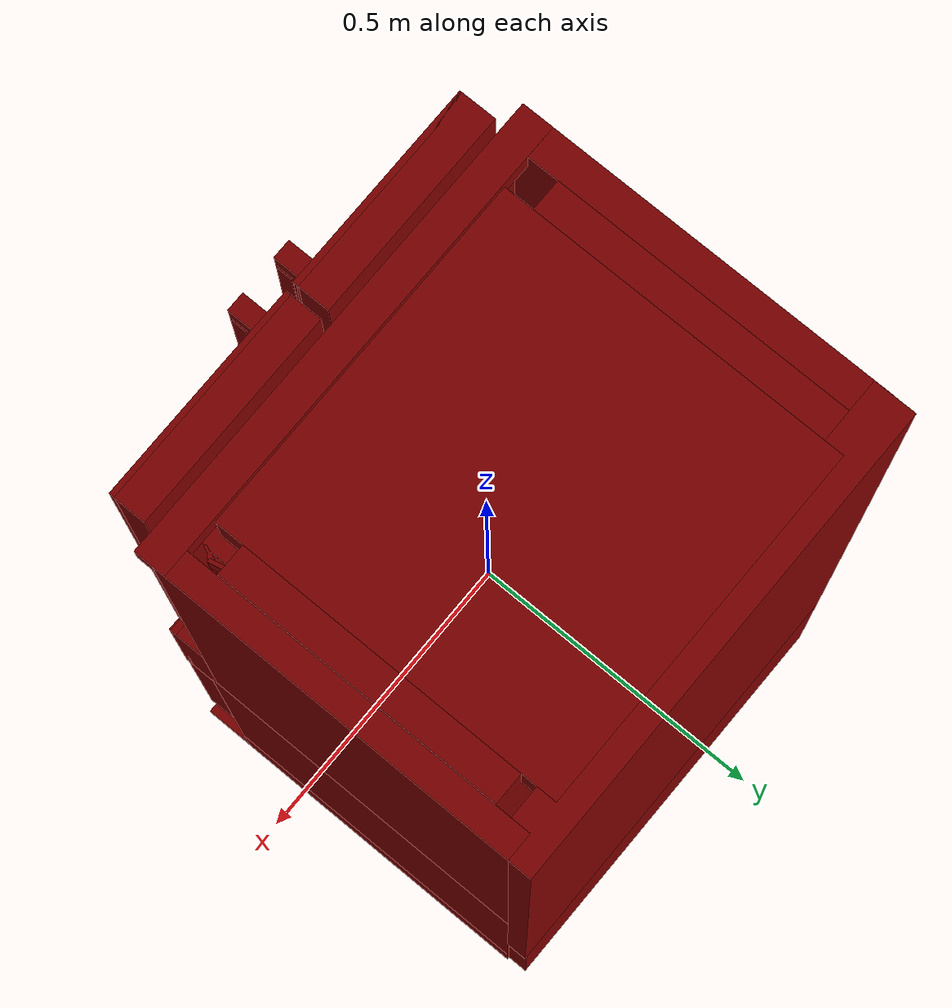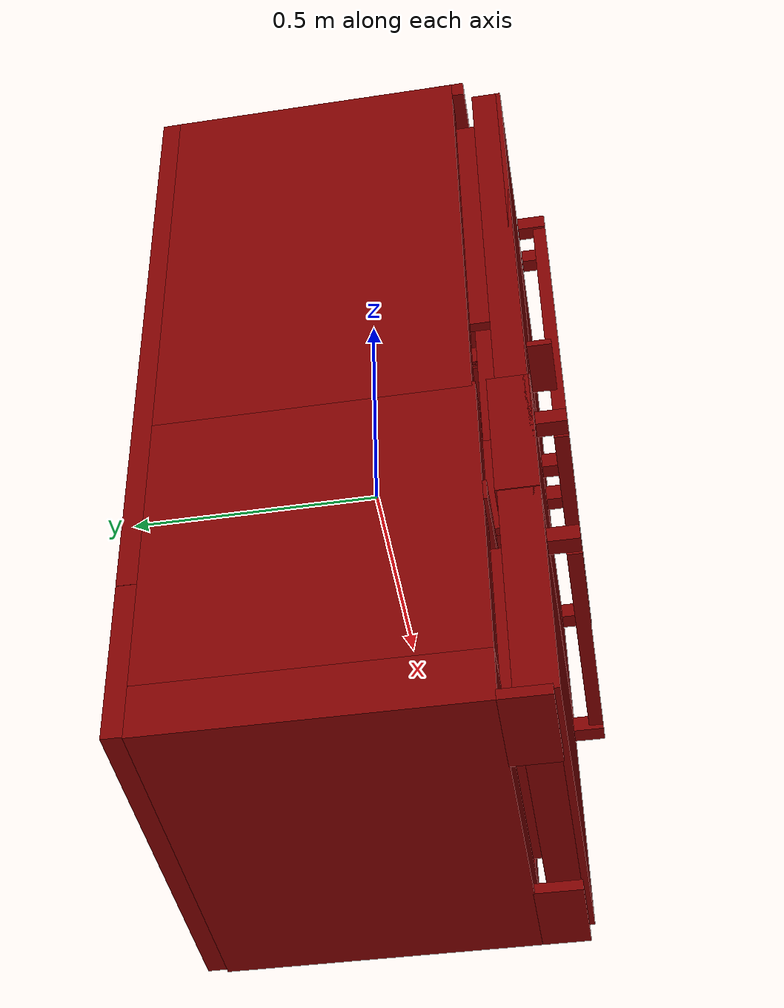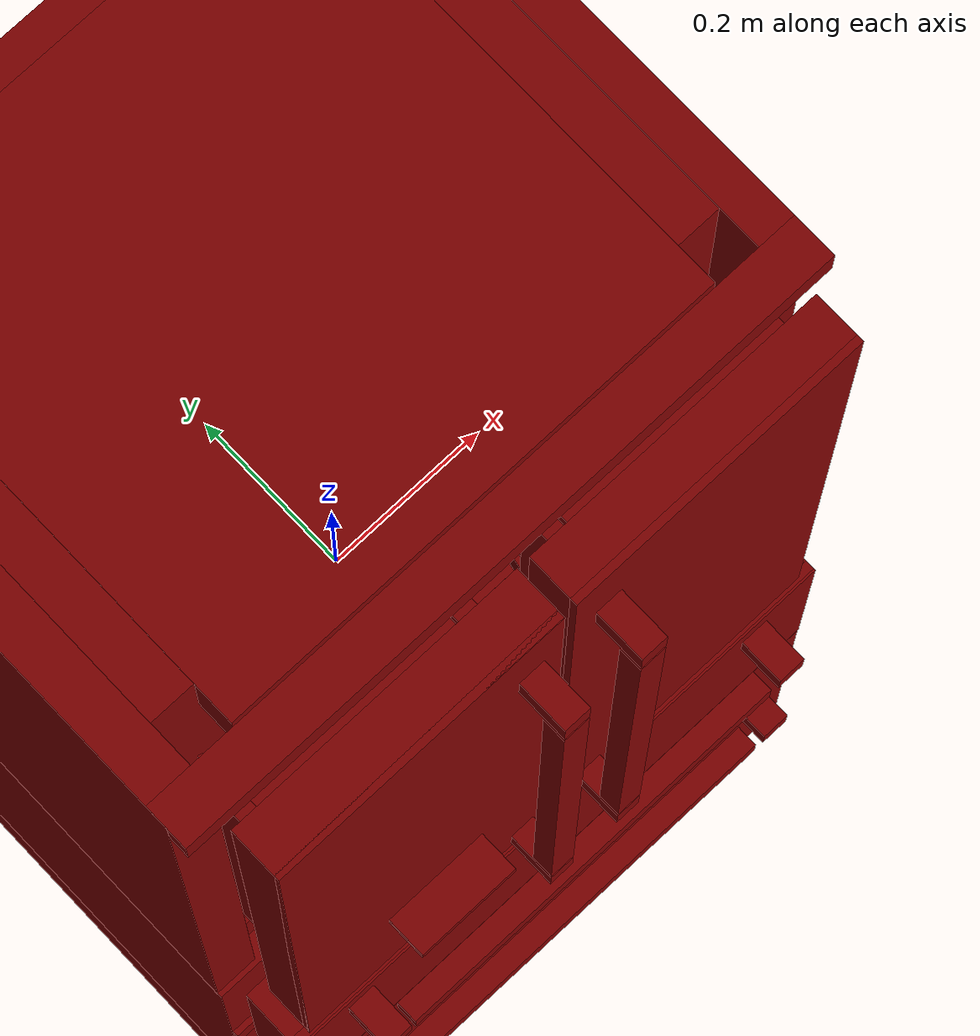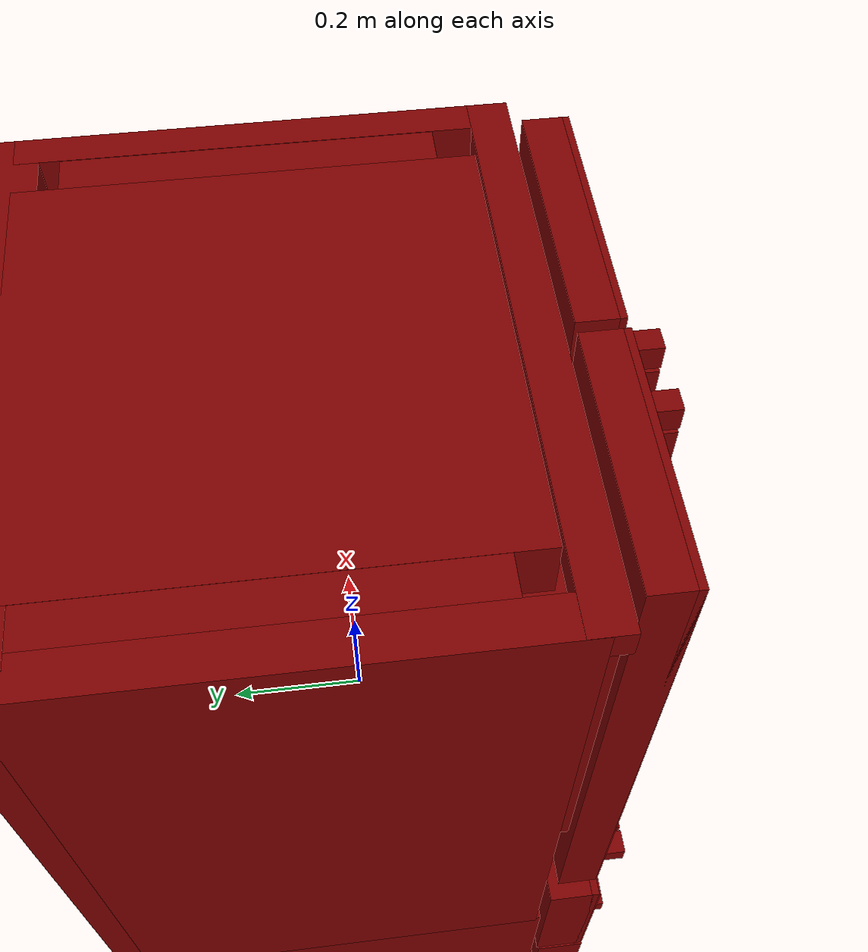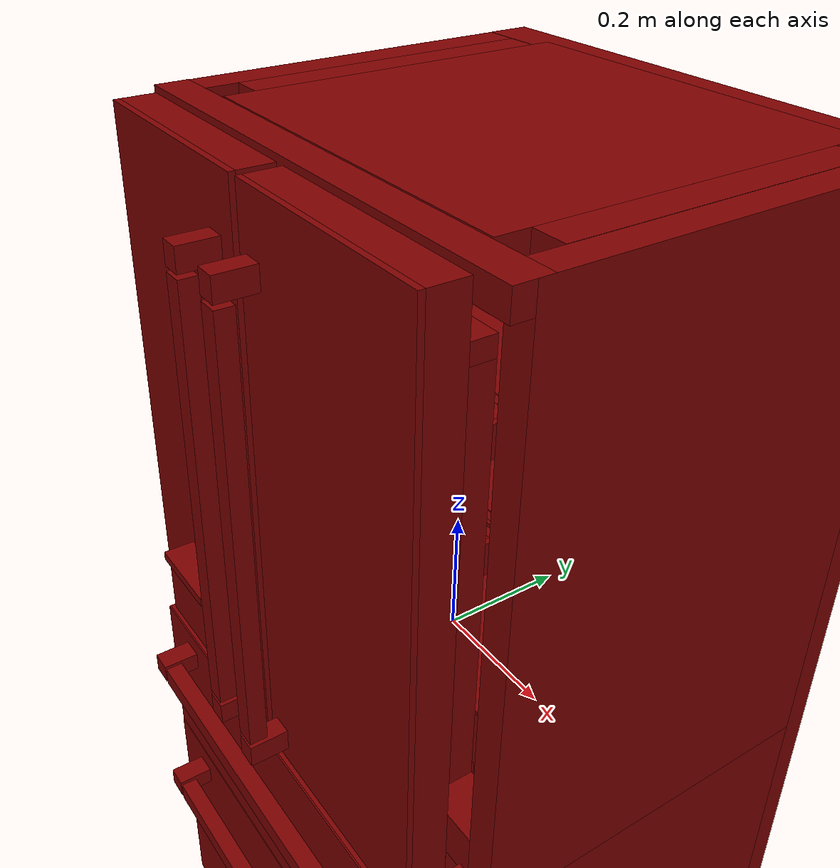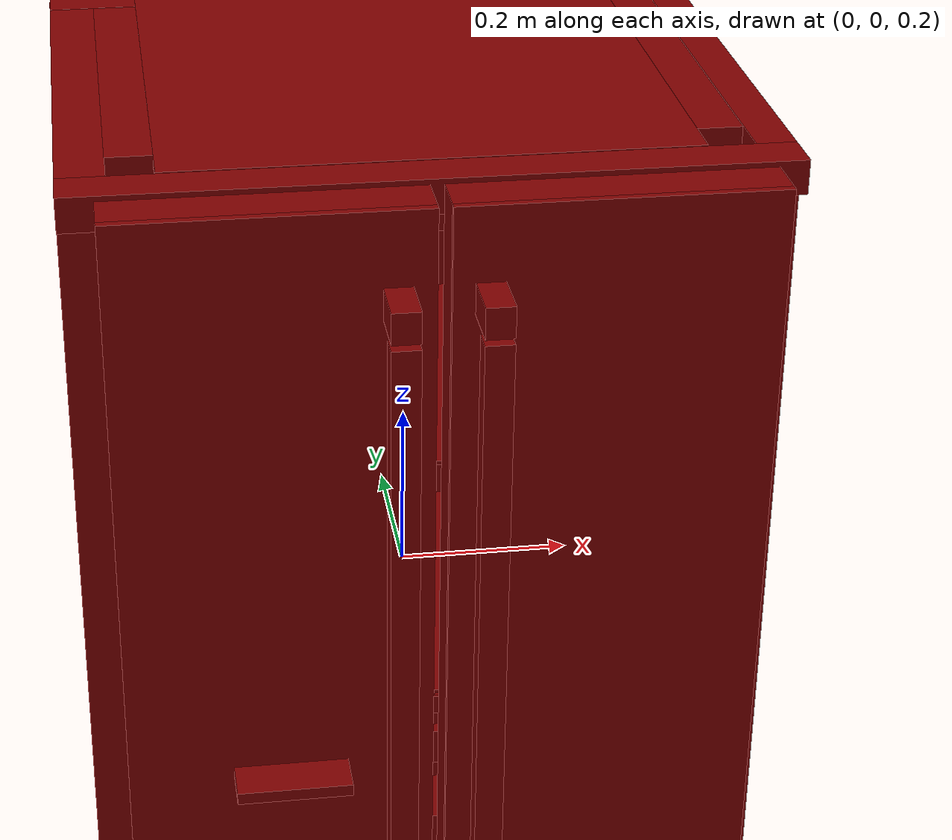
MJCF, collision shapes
<?xml version='1.0' encoding='UTF-8'?>
<mujoco model="model">
  <option timestep="0.002" gravity="0.0 0.0 -9.81"/>
  <compiler angle="radian"/>
  <asset>
    <mesh file="visuals/freezer0.obj" name="freezer0_vis"/>
    <mesh file="visuals/freezer1.obj" name="freezer1_vis"/>
    <mesh file="visuals/fridge_drawer0.obj" name="fridge_drawer0_vis"/>
    <mesh file="visuals/fridge_left_door.obj" name="fridge_left_door_vis"/>
    <mesh file="visuals/fridge_left_door_Clear.obj" name="fridge_left_door_Clear_vis"/>
    <mesh file="visuals/fridge_right_door.obj" name="fridge_right_door_vis"/>
    <mesh file="visuals/fridge_right_door_Clear.obj" name="fridge_right_door_Clear_vis"/>
    <mesh file="visuals/Body001.obj" name="Body001_vis"/>
    <mesh file="visuals/Body001_Clear.obj" name="Body001_Clear_vis"/>
    <mesh file="visuals/Body002.obj" name="Body002_vis"/>
    <texture file="visuals/T_BC001.png" name="Body001_material" type="2d"/>
    <material name="Body001_material" rgba="1 1 1 1.0" texture="Body001_material" shininess="2" specular="2"/>
    <texture file="visuals/T_BC001.png" name="freezer0_material" type="2d"/>
    <material name="freezer0_material" rgba="1 1 1 1.0" texture="freezer0_material" shininess="2" specular="2"/>
    <texture file="visuals/T_BC001.png" name="freezer1_material" type="2d"/>
    <material name="freezer1_material" rgba="1 1 1 1.0" texture="freezer1_material" shininess="2" specular="2"/>
    <texture file="visuals/T_BC001.png" name="fridge_drawer0_material" type="2d"/>
    <material name="fridge_drawer0_material" rgba="1 1 1 1.0" texture="fridge_drawer0_material" shininess="0.6" specular="0.3"/>
    <texture file="visuals/T_BC001.png" name="fridge_left_door_material" type="2d"/>
    <material name="fridge_left_door_material" rgba="1 1 1 1.0" texture="fridge_left_door_material" shininess="2" specular="2"/>
    <material name="fridge_left_door_Clear_material" rgba="0.749724805355072 0.749724805355072 0.749724805355072 0.699999988079071" shininess="0.2512328028678894" specular="0.3103448502657381"/>
    <texture file="visuals/T_BC001.png" name="fridge_right_door_material" type="2d"/>
    <material name="fridge_right_door_material" rgba="1 1 1 1.0" texture="fridge_right_door_material" shininess="2" specular="2"/>
    <material name="fridge_right_door_Clear_material" rgba="0.749724805355072 0.749724805355072 0.749724805355072 0.699999988079071" shininess="0.2512328028678894" specular="0.3103448502657381"/>
    <texture file="visuals/T_BC001.png" name="Body002_material" type="2d"/>
    <material name="Body002_material" rgba="1 1 1 1.0" texture="Body002_material" shininess="0.6585055291652679" specular="0.3103448502657381"/>
    <material name="Body001_Clear_material" rgba="0.749724805355072 0.749724805355072 0.749724805355072 0.699999988079071" shininess="0.2512328028678894" specular="0.3103448502657381"/>
  </asset>
  <default>
    <default class="visual">
      <geom conaffinity="0" contype="0" group="1" type="mesh"/>
    </default>
    <default class="collision">
      <geom group="0" rgba="0.5 0 0 0.5"/>
    </default>
    <default class="spawn">
      <geom group="0" rgba="1 1 1 0.5" contype="0" conaffinity="0"/>
      <site group="0" rgba="1 1 1 0.5"/>
    </default>
    <default class="region">
      <geom group="1" conaffinity="0" contype="0" rgba="0 1 0 0"/>
    </default>
  </default>
  <worldbody>
    <body>
      <body name="object">
        <geom mesh="Body001_vis" type="mesh" solimp="0.998 0.998 0.001" solref="0.001 1" friction="0.95 0.3 0.1" class="visual" material="Body001_material"/>
        <geom class="collision" type="box" pos="0.00429994 0.08053963 0.41524273" size="0.2578120231628418 0.2319180816411972 0.0024863099679350853" quat="1.0 0.0 0.0 0.0"/>
        <geom class="collision" type="box" pos="0.00429994 0.08053963 0.10372669" size="0.2578120231628418 0.2319188117980957 0.0024863744620233774" quat="1.0 0.0 0.0 0.0"/>
        <geom class="collision" type="box" pos="0.36522140 0.06541250 0.35242346" size="0.021883608773350716 0.2929628789424896 0.4526256322860718" quat="1.0 0.0 0.0 0.0"/>
        <geom class="collision" type="box" pos="-0.36098290 0.06286985 0.34691796" size="0.02612154744565487 0.2955061197280884 0.45772409439086914" quat="1.0 0.0 0.0 0.0"/>
        <geom class="collision" type="box" pos="0.00022345 0.36132324 0.15897222" size="0.3868730366230011 0.03419971093535423 0.6460715532302856" quat="1.0 0.0 0.0 0.0"/>
        <geom class="collision" type="box" pos="-0.00163238 0.33085490 -0.44926712" size="0.3845725655555725 0.06466779112815857 0.35290899872779846" quat="1.0 0.0 0.0 0.0"/>
        <geom class="collision" type="box" pos="-0.00058310 0.13760382 -0.63301572" size="0.35854974389076233 0.10725203901529312 0.061925146728754044" quat="0.8052064180374146 0.5929946303367615 -1.3167124518090139e-16 1.2232067335595694e-24"/>
        <geom class="collision" type="box" pos="0.00407962 0.07765477 0.76442716" size="0.28847646713256836 0.2807242274284363 0.04062699154019356" quat="1.0 0.0 0.0 0.0"/>
        <geom class="collision" type="box" pos="-0.00058310 0.07654325 -0.07229346" size="0.35847967863082886 0.2862354815006256 0.037867914885282516" quat="1.0 0.0 0.0 0.0"/>
        <geom class="collision" type="box" pos="-0.34605194 0.05985736 -0.40147525" size="0.04105202481150627 0.29852262139320374 0.3013904094696045" quat="1.0 0.0 0.0 0.0"/>
        <geom class="collision" type="box" pos="0.34605136 0.05985736 -0.40147525" size="0.04105301573872566 0.2985234260559082 0.3013916611671448" quat="1.0 0.0 0.0 0.0"/>
        <geom class="collision" type="box" pos="-0.00163238 -0.21026289 -0.36398423" size="0.38458558917045593 0.035720095038414 0.020923875272274017" quat="1.0 0.0 0.0 0.0"/>
        <geom class="collision" type="box" pos="0.00000020 0.05985809 -0.75382665" size="0.38709717988967896 0.2985237240791321 0.051228009164333344" quat="1.0 0.0 0.0 0.0"/>
        <geom class="collision" type="box" pos="-0.00058310 0.20006446 -0.59845778" size="0.35854974389076233 0.10667490214109421 0.07130120694637299" quat="0.6569743752479553 0.7539129257202148 -1.6740228450452978e-16 8.92800271459846e-24"/>
        <geom class="collision" type="box" pos="0.30282527 0.07270144 0.34711152" size="0.03964235633611679 0.22914409637451172 0.45793837308883667" quat="1.0 0.0 0.0 0.0"/>
        <geom class="collision" type="box" pos="-0.29257596 0.09765006 0.34691796" size="0.04262344166636467 0.2529412806034088 0.4577459990978241" quat="1.0 0.0 0.0 0.0"/>
        <geom class="collision" type="box" pos="0.00001201 -0.23167586 0.78562674" size="0.38708651065826416 0.025593800470232964 0.019427740946412086" quat="1.0 0.0 0.0 0.0"/>
        <geom class="collision" type="box" pos="0.29462891 -0.28104802 -0.79497960" size="0.0924748033285141 0.04488556087017059 0.010075722821056843" quat="1.0 0.0 0.0 0.0"/>
        <geom class="collision" type="box" pos="-0.29428331 -0.28104799 -0.79497960" size="0.09282006323337555 0.044885627925395966 0.010075770318508148" quat="1.0 0.0 0.0 0.0"/>
        <body name="freezer0">
          <geom class="region" name="reg_freezer0" type="box" pos="-0.00027051500000001283 -0.075523725 -0.553304625" size="0.18287641500000001 0.095773025 0.12618860499999998"/>
          <joint axis="0.0 -1.0 0.0" pos="0.00101368 -0.13383156 -0.57095697" limited="true" name="freezer0_door_joint" range="0.0 0.35" type="slide" damping="1" frictionloss="1" armature=".01" stiffness="0.05"/>
          <geom mesh="freezer0_vis" type="mesh" solimp="0.998 0.998 0.001" solref="0.001 1" friction="0.95 0.3 0.1" class="visual" material="freezer0_material"/>
          <geom class="collision" type="box" pos="0.00346250 -0.10964801 -0.68620357" size="0.22164221107959747 0.15478265285491943 0.0027201969642192125" quat="1.0 0.0 0.0 0.0"/>
          <geom class="collision" type="box" pos="0.21982875 -0.10576967 -0.55323145" size="0.027847619727253914 0.15864357352256775 0.13464730978012085" quat="1.0 0.0 0.0 0.0"/>
          <geom class="collision" type="box" pos="0.00346275 0.07007306 -0.58077767" size="0.24033810198307037 0.008362683467566967 0.09997935593128204" quat="0.9911026954650879 -0.13309930264949799 0.0 0.0"/>
          <geom class="collision" type="box" pos="-0.00009194 -0.29854404 -0.56946692" size="0.3705858886241913 0.0373670868575573 0.21259479224681854" quat="1.0 0.0 0.0 0.0"/>
          <geom class="collision" type="box" pos="0.22542089 0.05179094 -0.54816529" size="0.020509198307991028 0.11963428556919098 0.034643225371837616" quat="0.796074390411377 0.6051988005638123 1.343811153374047e-16 -1.0018506990580435e-22"/>
          <geom class="collision" type="box" pos="-0.22561473 0.05179094 -0.54816529" size="0.020509198307991028 0.11963428556919098 0.034643225371837616" quat="0.796074390411377 0.6051988005638123 1.343811153374047e-16 -1.0018506990580435e-22"/>
          <geom class="collision" type="box" pos="0.00339290 -0.23416711 -0.54298207" size="0.26272672414779663 0.0309009812772274 0.15255071222782135" quat="1.0 0.0 0.0 0.0"/>
          <geom class="collision" type="box" pos="-0.00187906 -0.37971258 -0.40571642" size="0.25582998991012573 0.013592430390417576 0.015477221459150314" quat="1.0 0.0 0.0 0.0" name="freezer0_door_handle_main"/>
          <geom class="collision" type="box" pos="0.28486242 -0.36391133 -0.40571639" size="0.01756277121603489 0.029393699020147324 0.01547711156308651" quat="1.0 0.0 0.0 0.0" name="freezer0_door_handle_2"/>
          <geom class="collision" type="box" pos="-0.28075657 -0.36391133 -0.40571645" size="0.01756278984248638 0.029393699020147324 0.015477129258215427" quat="1.0 0.0 0.0 0.0" name="freezer0_door_handle_1"/>
          <geom class="collision" type="box" pos="-0.21911839 -0.10576967 -0.55323145" size="0.02575531229376793 0.15865635871887207 0.13464730978012085" quat="1.0 0.0 0.0 0.0"/>
          <geom class="collision" type="box" pos="-0.00009194 -0.32934680 -0.56946692" size="0.3705858886241913 0.006564554758369923 0.2125975340604782" quat="1.0 0.0 0.0 0.0" name="freezer0_door_main"/>
        </body>
        <body name="freezer1">
          <geom class="region" name="reg_freezer1" type="box" pos="-0.00027051500000001283 -0.025947825 -0.23928609" size="0.18287641500000001 0.132391385 0.08487766000000002"/>
          <joint axis="0.0 -1.0 0.0" pos="0.00101367 -0.07551161 -0.21655831" limited="true" name="freezer1_door_joint" range="0.0 0.35" type="slide" damping="1" frictionloss="1" armature=".01" stiffness="0.05"/>
          <geom mesh="freezer1_vis" type="mesh" solimp="0.998 0.998 0.001" solref="0.001 1" friction="0.95 0.3 0.1" class="visual" material="freezer1_material"/>
          <geom class="collision" type="box" pos="-0.00731538 -0.06078362 -0.33128613" size="0.22138048708438873 0.20362567901611328 0.0027201951015740633" quat="1.0 0.0 0.0 0.0"/>
          <geom class="collision" type="box" pos="0.22074578 -0.05690526 -0.23913382" size="0.028469815850257874 0.20750828087329865 0.08867860585451126" quat="1.0 0.0 0.0 0.0"/>
          <geom class="collision" type="box" pos="-0.21445107 -0.05690526 -0.23913382" size="0.023943940177559853 0.20750854909420013 0.0886787548661232" quat="1.0 0.0 0.0 0.0"/>
          <geom class="collision" type="box" pos="0.00351829 0.16319073 -0.26036015" size="0.24008996784687042 0.008406518027186394 0.08296908438205719" quat="0.9585145711898804 -0.2850435972213745 9.149510929898043e-18 2.302646245811321e-18"/>
          <geom class="collision" type="box" pos="0.00166587 -0.29653868 -0.21663700" size="0.37027525901794434 0.039372291415929794 0.13647471368312836" quat="1.0 0.0 0.0 0.0"/>
          <geom class="collision" type="box" pos="0.22074578 0.03803797 -0.17746216" size="0.02847021073102951 0.2054920345544815 0.02835121564567089" quat="1.0 0.0 0.0 0.0"/>
          <geom class="collision" type="box" pos="0.22074578 0.13477162 -0.22790354" size="0.018643945455551147 0.04744146391749382 0.0580790638923645" quat="0.9578086137771606 -0.2874067723751068 -6.3817123224809e-17 -2.024741478083862e-24"/>
          <geom class="collision" type="box" pos="-0.22033565 0.13477162 -0.22790354" size="0.018643945455551147 0.04744146391749382 0.0580790638923645" quat="0.9578086137771606 -0.2874067723751068 -6.3817123224809e-17 -2.024741478083862e-24"/>
          <geom class="collision" type="box" pos="-0.22033565 0.03803797 -0.17812773" size="0.02847023867070675 0.205492302775383 0.027685679495334625" quat="1.0 0.0 0.0 0.0"/>
          <geom class="collision" type="box" pos="-0.00204915 0.22651372 -0.19553304" size="0.24674472212791443 0.017031461000442505 0.010282894596457481" quat="1.0 0.0 0.0 0.0"/>
          <geom class="collision" type="box" pos="0.00380645 -0.22836425 -0.22228651" size="0.24851921200752258 0.03516469523310661 0.10881463438272476" quat="1.0 0.0 0.0 0.0"/>
          <geom class="collision" type="box" pos="-0.28075657 -0.36391133 -0.12384887" size="0.017562828958034515 0.029393699020147324 0.01547717023640871" quat="1.0 0.0 0.0 0.0" name="freezer1_door_handle_1"/>
          <geom class="collision" type="box" pos="0.28486242 -0.36391133 -0.12384881" size="0.017562847584486008 0.029393699020147324 0.015477187931537628" quat="1.0 0.0 0.0 0.0" name="freezer1_door_handle_2"/>
          <geom class="collision" type="box" pos="-0.00187906 -0.37971258 -0.12384884" size="0.25583112239837646 0.013592430390417576 0.015477297827601433" quat="1.0 0.0 0.0 0.0" name="freezer1_door_handle_main"/>
          <geom class="collision" type="box" pos="0.00166587 -0.32762622 -0.21663700" size="0.37027525901794434 0.0057304613292217255 0.13647574186325073" quat="1.0 0.0 0.0 0.0" name="freezer1_door_main"/>
        </body>
        <body name="fridge_drawer0">
          <geom class="region" name="reg_fridge_drawer0" type="box" pos="0.00853008999999999 0.045865735 0.04288651" size="0.19115925 0.164030845 0.04248364"/>
          <joint axis="0.0 -1.0 0.0" pos="0.00791369 0.04509950 0.03411137" limited="true" name="fridge_drawer0_joint" range="0.0 0.4" type="slide" damping="1" frictionloss="1" armature=".01" stiffness="0.05"/>
          <geom mesh="fridge_drawer0_vis" type="mesh" solimp="0.998 0.998 0.001" solref="0.001 1" friction="0.95 0.3 0.1" class="visual" material="fridge_drawer0_material"/>
          <geom class="collision" type="box" pos="0.00808736 -0.13497960 0.08540598" size="0.19737645983695984 0.007127725053578615 0.006802691146731377" quat="1.0 0.0 0.0 0.0"/>
          <geom class="collision" type="box" pos="-0.20990857 0.04549089 0.03437742" size="0.021897485479712486 0.1901419758796692 0.05790940672159195" quat="1.0 0.0 0.0 0.0"/>
          <geom class="collision" type="box" pos="0.00735539 0.22654619 0.03437742" size="0.19566050171852112 0.010331028141081333 0.05791036784648895" quat="1.0 0.0 0.0 0.0"/>
          <geom class="collision" type="box" pos="0.00665960 0.04327609 -0.01403625" size="0.23699535429477692 0.1879308670759201 0.010060373693704605" quat="1.0 0.0 0.0 0.0"/>
          <geom class="collision" type="box" pos="0.00808736 -0.14322565 0.07998265" size="0.19737647473812103 0.0017362789949402213 0.012096093967556953" quat="1.0 0.0 0.0 0.0"/>
          <geom class="collision" type="box" pos="0.00808736 -0.13629312 0.01792400" size="0.19737368822097778 0.008400622755289078 0.02294149249792099" quat="1.0 0.0 0.0 0.0"/>
          <geom class="collision" type="box" pos="0.00808736 -0.12626548 0.04385847" size="0.19737647473812103 0.0017362789949402213 0.048016659915447235" quat="1.0 0.0 0.0 0.0"/>
          <geom class="collision" type="box" pos="0.17681504 -0.13492932 0.06342971" size="0.029539743438363075 0.010116226971149445 0.02181132882833481" quat="1.0 0.0 0.0 0.0"/>
          <geom class="collision" type="box" pos="0.22614014 0.04547463 0.03437742" size="0.021860139444470406 0.1901276409626007 0.05790990591049194" quat="1.0 0.0 0.0 0.0"/>
          <geom class="collision" type="box" pos="0.00648502 -0.12695871 0.06054501" size="0.14187918603420258 0.002305061789229512 0.021040746942162514" quat="1.0 0.0 0.0 0.0"/>
          <geom class="collision" type="box" pos="-0.16343053 -0.13492932 0.06342971" size="0.029539743438363075 0.010116291232407093 0.021811408922076225" quat="1.0 0.0 0.0 0.0"/>
        </body>
        <body name="fridge_left_door">
          <joint axis="0.0 0.0 -1.0" pos="-0.34544427 -0.31172749 0.36478308" limited="true" name="fridge_left_door_joint" range="0.0 1.5707963267948966" type="hinge" damping="1" frictionloss="1" armature=".01" stiffness="0.05"/>
          <geom mesh="fridge_left_door_vis" type="mesh" solimp="0.998 0.998 0.001" solref="0.001 1" friction="0.95 0.3 0.1" class="visual" material="fridge_left_door_material"/>
          <geom class="collision" type="box" pos="-0.05180522 -0.37971258 0.34535042" size="0.015476447530090809 0.013592430390417576 0.3356543183326721" quat="1.0 0.0 0.0 0.0" name="fridge_left_door_handle_main"/>
          <geom class="collision" type="box" pos="-0.05180522 -0.36391133 -0.01431408" size="0.015477113425731659 0.029393699020147324 0.01669364422559738" quat="1.0 0.0 0.0 0.0" name="fridge_left_door_handle_1"/>
          <geom class="collision" type="box" pos="-0.05180522 -0.36391133 0.70518908" size="0.015477100387215614 0.029393699020147324 0.017562735825777054" quat="1.0 0.0 0.0 0.0" name="fridge_left_door_handle_2"/>
          <geom class="collision" type="box" pos="-0.19205970 -0.22383907 0.40688360" size="0.110587477684021 0.05434567481279373 0.0026560069527477026" quat="1.0 0.0 0.0 0.0"/>
          <geom class="collision" type="box" pos="-0.07356167 -0.19498489 0.42777664" size="0.003092939266934991 0.02805575355887413 0.021901151165366173" quat="0.9885798096656799 0.0 0.0 0.15069818496704102"/>
          <geom class="collision" type="box" pos="-0.19003563 -0.17521169 0.44392169" size="0.11059349030256271 0.0017140626441687346 0.004185756202787161" quat="0.9622097015380859 -0.2723095715045929 -0.0 0.0"/>
          <geom class="collision" type="box" pos="-0.08153414 -0.25062093 0.42777664" size="0.0028704835567623377 0.01288655772805214 0.021901151165366173" quat="0.9840865731239319 0.0 -0.0 -0.1776898056268692"/>
          <geom class="collision" type="box" pos="-0.09724594 -0.27157285 0.42952520" size="0.0033591128885746002 0.01288655772805214 0.019200073555111885" quat="0.8508251905441284 0.0 -0.0 -0.5254489183425903"/>
          <geom class="collision" type="box" pos="-0.11413494 -0.27711564 0.42747924" size="0.0019354462856426835 0.005980806425213814 0.017154110595583916" quat="0.7541599273681641 0.0 -0.0 -0.6566908359527588"/>
          <geom class="collision" type="box" pos="-0.19156798 -0.27733248 0.41498447" size="0.07109232246875763 0.0015521845780313015 0.005146923940628767" quat="1.0 0.0 0.0 0.0"/>
          <geom class="collision" type="box" pos="-0.07589169 -0.22703306 0.42777664" size="0.0038647258188575506 0.01288655772805214 0.021901151165366173" quat="0.9840865731239319 0.0 -0.0 -0.1776898056268692"/>
          <geom class="collision" type="box" pos="-0.30819899 -0.22703306 0.42947826" size="0.0038647258188575506 0.01288655772805214 0.021901151165366173" quat="0.9840865731239319 0.0 0.0 0.1776898205280304"/>
          <geom class="collision" type="box" pos="-0.26995576 -0.27711564 0.42918086" size="0.0019354462856426835 0.005980806425213814 0.017154110595583916" quat="0.7541599273681641 0.0 0.0 0.6566908359527588"/>
          <geom class="collision" type="box" pos="-0.28684477 -0.27157285 0.43122682" size="0.0033591128885746002 0.01288655772805214 0.019200073555111885" quat="0.8508251905441284 0.0 0.0 0.5254489183425903"/>
          <geom class="collision" type="box" pos="-0.30255658 -0.25062093 0.42947826" size="0.0028704835567623377 0.01288655772805214 0.021901151165366173" quat="0.9840865731239319 0.0 0.0 0.1776898205280304"/>
          <geom class="collision" type="box" pos="-0.31052903 -0.19498489 0.42947826" size="0.003092939266934991 0.02805575355887413 0.021901151165366173" quat="0.9885798096656799 0.0 -0.0 -0.15069817006587982"/>
          <geom class="collision" type="box" pos="-0.19003563 -0.17521169 0.60272768" size="0.11059349030256271 0.0017140626441687346 0.004185756202787161" quat="0.9622097015380859 -0.2723095715045929 -0.0 0.0"/>
          <geom class="collision" type="box" pos="-0.31052903 -0.19498489 0.58828429" size="0.003092939266934991 0.02805575355887413 0.021901151165366173" quat="0.9885798096656799 0.0 -0.0 -0.15069817006587982"/>
          <geom class="collision" type="box" pos="-0.30255658 -0.25062093 0.58828429" size="0.0028704835567623377 0.01288655772805214 0.021901151165366173" quat="0.9840865731239319 0.0 0.0 0.1776898205280304"/>
          <geom class="collision" type="box" pos="-0.28684477 -0.27157285 0.59003285" size="0.0033591128885746002 0.01288655772805214 0.019200073555111885" quat="0.8508251905441284 0.0 0.0 0.5254489183425903"/>
          <geom class="collision" type="box" pos="-0.26995576 -0.27711564 0.58798686" size="0.0019354462856426835 0.005980806425213814 0.017154110595583916" quat="0.7541599273681641 0.0 0.0 0.6566908359527588"/>
          <geom class="collision" type="box" pos="-0.30819899 -0.22703306 0.58828429" size="0.0038647258188575506 0.01288655772805214 0.021901151165366173" quat="0.9840865731239319 0.0 0.0 0.1776898205280304"/>
          <geom class="collision" type="box" pos="-0.07589169 -0.22703306 0.58658263" size="0.0038647258188575506 0.01288655772805214 0.021901151165366173" quat="0.9840865731239319 0.0 -0.0 -0.1776898056268692"/>
          <geom class="collision" type="box" pos="-0.11413494 -0.27711564 0.58628521" size="0.0019354462856426835 0.005980806425213814 0.017154110595583916" quat="0.7541599273681641 0.0 -0.0 -0.6566908359527588"/>
          <geom class="collision" type="box" pos="-0.09724594 -0.27157285 0.58833119" size="0.0033591128885746002 0.01288655772805214 0.019200073555111885" quat="0.8508251905441284 0.0 -0.0 -0.5254489183425903"/>
          <geom class="collision" type="box" pos="-0.08153414 -0.25062093 0.58658263" size="0.0028704835567623377 0.01288655772805214 0.021901151165366173" quat="0.9840865731239319 0.0 -0.0 -0.1776898056268692"/>
          <geom class="collision" type="box" pos="-0.07356167 -0.19498489 0.58658263" size="0.003092939266934991 0.02805575355887413 0.021901151165366173" quat="0.9885798096656799 0.0 0.0 0.15069818496704102"/>
          <geom class="collision" type="box" pos="-0.19156798 -0.27733248 0.57379052" size="0.07109241187572479 0.0015521845780313015 0.0051469323225319386" quat="1.0 0.0 0.0 0.0"/>
          <geom class="collision" type="box" pos="-0.19205970 -0.22383907 0.56568965" size="0.1105942502617836 0.05434567481279373 0.0026561664417386055" quat="1.0 0.0 0.0 0.0"/>
          <geom class="collision" type="box" pos="-0.17980767 -0.30130544 0.36844772" size="0.1683434545993805 0.029942452907562256 0.4366070330142975" quat="1.0 0.0 0.0 0.0"/>
          <geom class="collision" type="box" pos="-0.05693918 -0.25041267 0.34733826" size="0.011535602621734142 0.026942642405629158 0.3783109486103058" quat="1.0 0.0 0.0 0.0"/>
          <geom class="collision" type="box" pos="-0.31978807 -0.25041267 0.41982177" size="0.009782944805920124 0.026942642405629158 0.3056289553642273" quat="1.0 0.0 0.0 0.0"/>
          <geom class="collision" type="box" pos="-0.19056979 -0.25041267 0.71564171" size="0.11949492990970612 0.02694264054298401 0.010041559115052223" quat="1.0 0.0 0.0 0.0"/>
          <geom class="collision" type="box" pos="-0.17980767 -0.32725712 0.36844778" size="0.1683434545993805 0.004683855455368757 0.43660709261894226" quat="1.0 0.0 0.0 0.0" name="fridge_left_door_main"/>
          <geom class="collision" type="box" pos="-0.16951761 -0.35275828 0.14290710" size="0.06311080604791641 0.027577651664614677 0.006958810146898031" quat="1.0 0.0 0.0 0.0"/>
          <body name="fridge_left_door_Clear">
            <geom mesh="fridge_left_door_Clear_vis" type="mesh" solimp="0.998 0.998 0.001" solref="0.001 1" friction="0.95 0.3 0.1" class="visual" material="fridge_left_door_Clear_material"/>
            <geom class="collision" type="box" pos="-0.19205970 -0.22383907 0.40688360" size="0.110587477684021 0.05434567481279373 0.0026560069527477026" quat="1.0 0.0 0.0 0.0"/>
            <geom class="collision" type="box" pos="-0.07356167 -0.19498489 0.42777664" size="0.003092939266934991 0.02805575355887413 0.021901151165366173" quat="0.9885798096656799 0.0 0.0 0.15069818496704102"/>
            <geom class="collision" type="box" pos="-0.19003563 -0.17521169 0.44392169" size="0.11059349030256271 0.0017140626441687346 0.004185756202787161" quat="0.9622097015380859 -0.2723095715045929 -0.0 0.0"/>
            <geom class="collision" type="box" pos="-0.08153414 -0.25062093 0.42777664" size="0.0028704835567623377 0.01288655772805214 0.021901151165366173" quat="0.9840865731239319 0.0 -0.0 -0.1776898056268692"/>
            <geom class="collision" type="box" pos="-0.09724594 -0.27157285 0.42952520" size="0.0033591128885746002 0.01288655772805214 0.019200073555111885" quat="0.8508251905441284 0.0 -0.0 -0.5254489183425903"/>
            <geom class="collision" type="box" pos="-0.11413494 -0.27711564 0.42747924" size="0.0019354462856426835 0.005980806425213814 0.017154110595583916" quat="0.7541599273681641 0.0 -0.0 -0.6566908359527588"/>
            <geom class="collision" type="box" pos="-0.19156798 -0.27733248 0.41498447" size="0.07109232246875763 0.0015521845780313015 0.005146923940628767" quat="1.0 0.0 0.0 0.0"/>
            <geom class="collision" type="box" pos="-0.07589169 -0.22703306 0.42777664" size="0.0038647258188575506 0.01288655772805214 0.021901151165366173" quat="0.9840865731239319 0.0 -0.0 -0.1776898056268692"/>
            <geom class="collision" type="box" pos="-0.30819899 -0.22703306 0.42947826" size="0.0038647258188575506 0.01288655772805214 0.021901151165366173" quat="0.9840865731239319 0.0 0.0 0.1776898205280304"/>
            <geom class="collision" type="box" pos="-0.26995576 -0.27711564 0.42918086" size="0.0019354462856426835 0.005980806425213814 0.017154110595583916" quat="0.7541599273681641 0.0 0.0 0.6566908359527588"/>
            <geom class="collision" type="box" pos="-0.28684477 -0.27157285 0.43122682" size="0.0033591128885746002 0.01288655772805214 0.019200073555111885" quat="0.8508251905441284 0.0 0.0 0.5254489183425903"/>
            <geom class="collision" type="box" pos="-0.30255658 -0.25062093 0.42947826" size="0.0028704835567623377 0.01288655772805214 0.021901151165366173" quat="0.9840865731239319 0.0 0.0 0.1776898205280304"/>
            <geom class="collision" type="box" pos="-0.31052903 -0.19498489 0.42947826" size="0.003092939266934991 0.02805575355887413 0.021901151165366173" quat="0.9885798096656799 0.0 -0.0 -0.15069817006587982"/>
            <geom class="collision" type="box" pos="-0.19003563 -0.17521169 0.60272768" size="0.11059349030256271 0.0017140626441687346 0.004185756202787161" quat="0.9622097015380859 -0.2723095715045929 -0.0 0.0"/>
            <geom class="collision" type="box" pos="-0.31052903 -0.19498489 0.58828429" size="0.003092939266934991 0.02805575355887413 0.021901151165366173" quat="0.9885798096656799 0.0 -0.0 -0.15069817006587982"/>
            <geom class="collision" type="box" pos="-0.30255658 -0.25062093 0.58828429" size="0.0028704835567623377 0.01288655772805214 0.021901151165366173" quat="0.9840865731239319 0.0 0.0 0.1776898205280304"/>
            <geom class="collision" type="box" pos="-0.28684477 -0.27157285 0.59003285" size="0.0033591128885746002 0.01288655772805214 0.019200073555111885" quat="0.8508251905441284 0.0 0.0 0.5254489183425903"/>
            <geom class="collision" type="box" pos="-0.26995576 -0.27711564 0.58798686" size="0.0019354462856426835 0.005980806425213814 0.017154110595583916" quat="0.7541599273681641 0.0 0.0 0.6566908359527588"/>
            <geom class="collision" type="box" pos="-0.30819899 -0.22703306 0.58828429" size="0.0038647258188575506 0.01288655772805214 0.021901151165366173" quat="0.9840865731239319 0.0 0.0 0.1776898205280304"/>
            <geom class="collision" type="box" pos="-0.07589169 -0.22703306 0.58658263" size="0.0038647258188575506 0.01288655772805214 0.021901151165366173" quat="0.9840865731239319 0.0 -0.0 -0.1776898056268692"/>
            <geom class="collision" type="box" pos="-0.11413494 -0.27711564 0.58628521" size="0.0019354462856426835 0.005980806425213814 0.017154110595583916" quat="0.7541599273681641 0.0 -0.0 -0.6566908359527588"/>
            <geom class="collision" type="box" pos="-0.09724594 -0.27157285 0.58833119" size="0.0033591128885746002 0.01288655772805214 0.019200073555111885" quat="0.8508251905441284 0.0 -0.0 -0.5254489183425903"/>
            <geom class="collision" type="box" pos="-0.08153414 -0.25062093 0.58658263" size="0.0028704835567623377 0.01288655772805214 0.021901151165366173" quat="0.9840865731239319 0.0 -0.0 -0.1776898056268692"/>
            <geom class="collision" type="box" pos="-0.07356167 -0.19498489 0.58658263" size="0.003092939266934991 0.02805575355887413 0.021901151165366173" quat="0.9885798096656799 0.0 0.0 0.15069818496704102"/>
            <geom class="collision" type="box" pos="-0.19156798 -0.27733248 0.57379052" size="0.07109241187572479 0.0015521845780313015 0.0051469323225319386" quat="1.0 0.0 0.0 0.0"/>
            <geom class="collision" type="box" pos="-0.19205970 -0.22383907 0.56568965" size="0.1105942502617836 0.05434567481279373 0.0026561664417386055" quat="1.0 0.0 0.0 0.0"/>
          </body>
        </body>
        <body name="fridge_right_door">
          <joint axis="0.0 0.0 1.0" pos="0.35031574 -0.31172749 0.36478308" limited="true" name="fridge_right_door_joint" range="0.0 1.5707963267948966" type="hinge" damping="1" frictionloss="1" armature=".01" stiffness="0.05"/>
          <geom mesh="fridge_right_door_vis" type="mesh" solimp="0.998 0.998 0.001" solref="0.001 1" friction="0.95 0.3 0.1" class="visual" material="fridge_right_door_material"/>
          <geom class="collision" type="box" pos="0.04179394 -0.36391133 -0.01518319" size="0.015477132983505726 0.029393699020147324 0.01756276749074459" quat="1.0 0.0 0.0 0.0" name="fridge_right_door_handle_1"/>
          <geom class="collision" type="box" pos="0.04179394 -0.36391133 0.70518908" size="0.015477150678634644 0.029393699020147324 0.017562786117196083" quat="1.0 0.0 0.0 0.0" name="fridge_right_door_handle_2"/>
          <geom class="collision" type="box" pos="0.04179394 -0.37971258 0.34535042" size="0.015477212145924568 0.013592430390417576 0.33567845821380615" quat="1.0 0.0 0.0 0.0" name="fridge_right_door_handle_main"/>
          <geom class="collision" type="box" pos="0.18544730 -0.21910607 0.56586734" size="0.11692698299884796 0.05434567481279373 0.0031017435248941183" quat="1.0 0.0 0.0 0.0"/>
          <geom class="collision" type="box" pos="0.18669943 -0.27689018 0.57296804" size="0.09014777839183807 0.0015521845780313015 0.005656135268509388" quat="1.0 0.0 0.0 0.0"/>
          <geom class="collision" type="box" pos="0.06166650 -0.22365172 0.58858213" size="0.0038647258188575506 0.01288655772805214 0.021901151165366173" quat="0.9840865731239319 0.0 0.0 0.1776898205280304"/>
          <geom class="collision" type="box" pos="0.09382745 -0.27661103 0.58524010" size="0.0019354462856426835 0.005980806425213814 0.017154110595583916" quat="0.7541599273681641 0.0 0.0 0.6566908359527588"/>
          <geom class="collision" type="box" pos="0.07787337 -0.26987624 0.58985821" size="0.0033591128885746002 0.01288655772805214 0.019200073555111885" quat="0.8973978161811829 0.0 0.0 0.4412223994731903"/>
          <geom class="collision" type="box" pos="0.06747663 -0.24763073 0.58989045" size="0.0028704835567623377 0.01288655772805214 0.021901151165366173" quat="0.9953531622886658 0.0 0.0 0.09629158675670624"/>
          <geom class="collision" type="box" pos="0.06031815 -0.19025190 0.58907983" size="0.003092939266934991 0.02805575169622898 0.021901151165366173" quat="0.9940382242202759 0.0 -0.0 -0.10903210192918777"/>
          <geom class="collision" type="box" pos="0.18843194 -0.16964587 0.60559198" size="0.11775068938732147 0.0017140626441687346 0.004185756202787161" quat="0.9622097015380859 -0.2723095715045929 -0.0 0.0"/>
          <geom class="collision" type="box" pos="0.31044748 -0.19025190 0.58907983" size="0.003092939266934991 0.02805575169622898 0.021901151165366173" quat="0.9940382242202759 0.0 0.0 0.10903210937976837"/>
          <geom class="collision" type="box" pos="0.30604672 -0.24763073 0.58989045" size="0.0028704835567623377 0.01288655772805214 0.021901151165366173" quat="0.9953531622886658 0.0 -0.0 -0.09629159420728683"/>
          <geom class="collision" type="box" pos="0.29616477 -0.26987624 0.58985821" size="0.0033591128885746002 0.01288655772805214 0.019200073555111885" quat="0.8973978161811829 0.0 -0.0 -0.4412223994731903"/>
          <geom class="collision" type="box" pos="0.28021070 -0.27661103 0.58524010" size="0.0019354462856426835 0.005980806425213814 0.017154110595583916" quat="0.7541599273681641 0.0 -0.0 -0.6566908359527588"/>
          <geom class="collision" type="box" pos="0.31023788 -0.22365172 0.58858213" size="0.0038647258188575506 0.01288655772805214 0.021901151165366173" quat="0.9840865135192871 0.0 -0.0 -0.17768986523151398"/>
          <geom class="collision" type="box" pos="0.18669943 -0.27689018 0.41857085" size="0.09014786779880524 0.0015521845780313015 0.0056561436504125595" quat="1.0 0.0 0.0 0.0"/>
          <geom class="collision" type="box" pos="0.18544730 -0.21910607 0.41191575" size="0.11692751944065094 0.05434567481279373 0.0026561834383755922" quat="1.0 0.0 0.0 0.0"/>
          <geom class="collision" type="box" pos="0.18843194 -0.16964587 0.45119485" size="0.11775068938732147 0.0017140626441687346 0.004185756202787161" quat="0.9622097015380859 -0.2723095715045929 -0.0 0.0"/>
          <geom class="collision" type="box" pos="0.31044748 -0.19025190 0.43468267" size="0.003092939266934991 0.02805575169622898 0.021901151165366173" quat="0.9940382242202759 0.0 0.0 0.10903210937976837"/>
          <geom class="collision" type="box" pos="0.06031815 -0.19025190 0.43468267" size="0.003092939266934991 0.02805575169622898 0.021901151165366173" quat="0.9940382242202759 0.0 -0.0 -0.10903210192918777"/>
          <geom class="collision" type="box" pos="0.30604672 -0.24763073 0.43549329" size="0.0028704835567623377 0.01288655772805214 0.021901151165366173" quat="0.9953531622886658 0.0 -0.0 -0.09629159420728683"/>
          <geom class="collision" type="box" pos="0.06747663 -0.24763073 0.43549329" size="0.0028704835567623377 0.01288655772805214 0.021901151165366173" quat="0.9953531622886658 0.0 0.0 0.09629158675670624"/>
          <geom class="collision" type="box" pos="0.29616477 -0.26987624 0.43546105" size="0.0033591128885746002 0.01288655772805214 0.019200073555111885" quat="0.8973978161811829 0.0 -0.0 -0.4412223994731903"/>
          <geom class="collision" type="box" pos="0.07787337 -0.26987624 0.43546105" size="0.0033591128885746002 0.01288655772805214 0.019200073555111885" quat="0.8973978161811829 0.0 0.0 0.4412223994731903"/>
          <geom class="collision" type="box" pos="0.28021070 -0.27661103 0.43084297" size="0.0019354462856426835 0.005980806425213814 0.017154110595583916" quat="0.7541599273681641 0.0 -0.0 -0.6566908359527588"/>
          <geom class="collision" type="box" pos="0.09382745 -0.27661103 0.43084297" size="0.0019354462856426835 0.005980806425213814 0.017154110595583916" quat="0.7541599273681641 0.0 0.0 0.6566908359527588"/>
          <geom class="collision" type="box" pos="0.31023788 -0.22365172 0.43418497" size="0.0038647258188575506 0.01288655772805214 0.021901151165366173" quat="0.9840865135192871 0.0 -0.0 -0.17768986523151398"/>
          <geom class="collision" type="box" pos="0.06166650 -0.22365172 0.43418497" size="0.0038647258188575506 0.01288655772805214 0.021901151165366173" quat="0.9840865731239319 0.0 0.0 0.1776898205280304"/>
          <geom class="collision" type="box" pos="0.17688725 -0.29853066 0.36844564" size="0.1735529899597168 0.02716769278049469 0.43660882115364075" quat="1.0 0.0 0.0 0.0"/>
          <geom class="collision" type="box" pos="0.19752712 -0.24935293 0.71188209" size="0.1339234560728073 0.027177613228559494 0.013726712204515934" quat="1.0 0.0 0.0 0.0"/>
          <geom class="collision" type="box" pos="0.32151099 -0.24935293 0.41022483" size="0.00967022031545639 0.027177615091204643 0.2948032319545746" quat="1.0 0.0 0.0 0.0"/>
          <geom class="collision" type="box" pos="0.05464556 -0.24935293 0.33761361" size="0.011458209715783596 0.027177615091204643 0.367401123046875" quat="1.0 0.0 0.0 0.0"/>
          <geom class="collision" type="box" pos="0.17688727 -0.32682308 0.36844558" size="0.17355328798294067 0.004249803721904755 0.4366094172000885" quat="1.0 0.0 0.0 0.0" name="fridge_right_door_main"/>
          <body name="fridge_right_door_Clear">
            <geom mesh="fridge_right_door_Clear_vis" type="mesh" solimp="0.998 0.998 0.001" solref="0.001 1" friction="0.95 0.3 0.1" class="visual" material="fridge_right_door_Clear_material"/>
            <geom class="collision" type="box" pos="0.18544730 -0.21910607 0.56586734" size="0.11692698299884796 0.05434567481279373 0.0031017435248941183" quat="1.0 0.0 0.0 0.0"/>
            <geom class="collision" type="box" pos="0.18669943 -0.27689018 0.57296804" size="0.09014777839183807 0.0015521845780313015 0.005656135268509388" quat="1.0 0.0 0.0 0.0"/>
            <geom class="collision" type="box" pos="0.06166650 -0.22365172 0.58858213" size="0.0038647258188575506 0.01288655772805214 0.021901151165366173" quat="0.9840865731239319 0.0 0.0 0.1776898205280304"/>
            <geom class="collision" type="box" pos="0.09382745 -0.27661103 0.58524010" size="0.0019354462856426835 0.005980806425213814 0.017154110595583916" quat="0.7541599273681641 0.0 0.0 0.6566908359527588"/>
            <geom class="collision" type="box" pos="0.07787337 -0.26987624 0.58985821" size="0.0033591128885746002 0.01288655772805214 0.019200073555111885" quat="0.8973978161811829 0.0 0.0 0.4412223994731903"/>
            <geom class="collision" type="box" pos="0.06747663 -0.24763073 0.58989045" size="0.0028704835567623377 0.01288655772805214 0.021901151165366173" quat="0.9953531622886658 0.0 0.0 0.09629158675670624"/>
            <geom class="collision" type="box" pos="0.06031815 -0.19025190 0.58907983" size="0.003092939266934991 0.02805575169622898 0.021901151165366173" quat="0.9940382242202759 0.0 -0.0 -0.10903210192918777"/>
            <geom class="collision" type="box" pos="0.18843194 -0.16964587 0.60559198" size="0.11775068938732147 0.0017140626441687346 0.004185756202787161" quat="0.9622097015380859 -0.2723095715045929 -0.0 0.0"/>
            <geom class="collision" type="box" pos="0.31044748 -0.19025190 0.58907983" size="0.003092939266934991 0.02805575169622898 0.021901151165366173" quat="0.9940382242202759 0.0 0.0 0.10903210937976837"/>
            <geom class="collision" type="box" pos="0.30604672 -0.24763073 0.58989045" size="0.0028704835567623377 0.01288655772805214 0.021901151165366173" quat="0.9953531622886658 0.0 -0.0 -0.09629159420728683"/>
            <geom class="collision" type="box" pos="0.29616477 -0.26987624 0.58985821" size="0.0033591128885746002 0.01288655772805214 0.019200073555111885" quat="0.8973978161811829 0.0 -0.0 -0.4412223994731903"/>
            <geom class="collision" type="box" pos="0.28021070 -0.27661103 0.58524010" size="0.0019354462856426835 0.005980806425213814 0.017154110595583916" quat="0.7541599273681641 0.0 -0.0 -0.6566908359527588"/>
            <geom class="collision" type="box" pos="0.31023788 -0.22365172 0.58858213" size="0.0038647258188575506 0.01288655772805214 0.021901151165366173" quat="0.9840865135192871 0.0 -0.0 -0.17768986523151398"/>
            <geom class="collision" type="box" pos="0.18669943 -0.27689018 0.41857085" size="0.09014786779880524 0.0015521845780313015 0.0056561436504125595" quat="1.0 0.0 0.0 0.0"/>
            <geom class="collision" type="box" pos="0.18544730 -0.21910607 0.41191575" size="0.11692751944065094 0.05434567481279373 0.0026561834383755922" quat="1.0 0.0 0.0 0.0"/>
            <geom class="collision" type="box" pos="0.18843194 -0.16964587 0.45119485" size="0.11775068938732147 0.0017140626441687346 0.004185756202787161" quat="0.9622097015380859 -0.2723095715045929 -0.0 0.0"/>
            <geom class="collision" type="box" pos="0.31044748 -0.19025190 0.43468267" size="0.003092939266934991 0.02805575169622898 0.021901151165366173" quat="0.9940382242202759 0.0 0.0 0.10903210937976837"/>
            <geom class="collision" type="box" pos="0.06031815 -0.19025190 0.43468267" size="0.003092939266934991 0.02805575169622898 0.021901151165366173" quat="0.9940382242202759 0.0 -0.0 -0.10903210192918777"/>
            <geom class="collision" type="box" pos="0.30604672 -0.24763073 0.43549329" size="0.0028704835567623377 0.01288655772805214 0.021901151165366173" quat="0.9953531622886658 0.0 -0.0 -0.09629159420728683"/>
            <geom class="collision" type="box" pos="0.06747663 -0.24763073 0.43549329" size="0.0028704835567623377 0.01288655772805214 0.021901151165366173" quat="0.9953531622886658 0.0 0.0 0.09629158675670624"/>
            <geom class="collision" type="box" pos="0.29616477 -0.26987624 0.43546105" size="0.0033591128885746002 0.01288655772805214 0.019200073555111885" quat="0.8973978161811829 0.0 -0.0 -0.4412223994731903"/>
            <geom class="collision" type="box" pos="0.07787337 -0.26987624 0.43546105" size="0.0033591128885746002 0.01288655772805214 0.019200073555111885" quat="0.8973978161811829 0.0 0.0 0.4412223994731903"/>
            <geom class="collision" type="box" pos="0.28021070 -0.27661103 0.43084297" size="0.0019354462856426835 0.005980806425213814 0.017154110595583916" quat="0.7541599273681641 0.0 -0.0 -0.6566908359527588"/>
            <geom class="collision" type="box" pos="0.09382745 -0.27661103 0.43084297" size="0.0019354462856426835 0.005980806425213814 0.017154110595583916" quat="0.7541599273681641 0.0 0.0 0.6566908359527588"/>
            <geom class="collision" type="box" pos="0.31023788 -0.22365172 0.43418497" size="0.0038647258188575506 0.01288655772805214 0.021901151165366173" quat="0.9840865135192871 0.0 -0.0 -0.17768986523151398"/>
            <geom class="collision" type="box" pos="0.06166650 -0.22365172 0.43418497" size="0.0038647258188575506 0.01288655772805214 0.021901151165366173" quat="0.9840865731239319 0.0 0.0 0.1776898205280304"/>
          </body>
        </body>
        <body name="Body002">
          <geom mesh="Body002_vis" type="mesh" solimp="0.998 0.998 0.001" solref="0.001 1" friction="0.95 0.3 0.1" class="visual" material="Body002_material"/>
          <body name="Body001_Clear">
            <geom mesh="Body001_Clear_vis" type="mesh" solimp="0.998 0.998 0.001" solref="0.001 1" friction="0.95 0.3 0.1" class="visual" material="Body001_Clear_material"/>
            <geom class="collision" type="box" pos="0.00429994 0.08053963 0.41524273" size="0.2578120231628418 0.2319180816411972 0.0024863099679350853" quat="1.0 0.0 0.0 0.0"/>
            <geom class="collision" type="box" pos="0.00429994 0.08053963 0.10372669" size="0.2578120231628418 0.2319188117980957 0.0024863744620233774" quat="1.0 0.0 0.0 0.0"/>
          </body>
        </body>
        <geom class="region" name="reg_fridge_shelf0" type="box" pos="0.012777394999999997 0.069380835 0.259223305" size="0.244443445 0.219980425 0.147586875"/>
        <geom class="region" name="reg_fridge_shelf1" type="box" pos="0.01279139 0.069380835 0.57116336" size="0.24442945 0.219980425 0.14698610999999998"/>
        <geom class="region" name="reg_main" type="box" pos="2.0499999997536378e-07 0.02980598000000001 -3.550000000074327e-07" size="0.388105225 0.36671735 0.8060551450000001"/>
      </body>
    </body>
  </worldbody>
  <actuator>
    <motor name="freezer0_door_joint_actuator" joint="freezer0_door_joint" gear="50"/>
    <motor name="freezer1_door_joint_actuator" joint="freezer1_door_joint" gear="50"/>
    <motor name="fridge_drawer0_joint_actuator" joint="fridge_drawer0_joint" gear="50"/>
    <motor name="fridge_left_door_joint_actuator" joint="fridge_left_door_joint" gear="50"/>
    <motor name="fridge_right_door_joint_actuator" joint="fridge_right_door_joint" gear="50"/>
  </actuator>
</mujoco>
